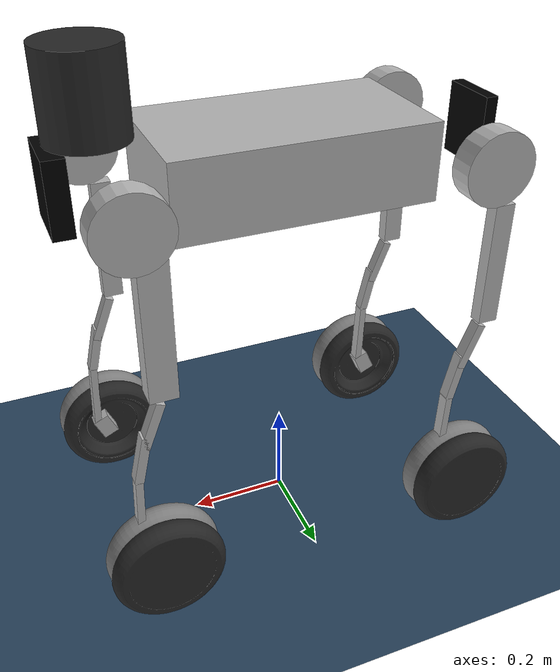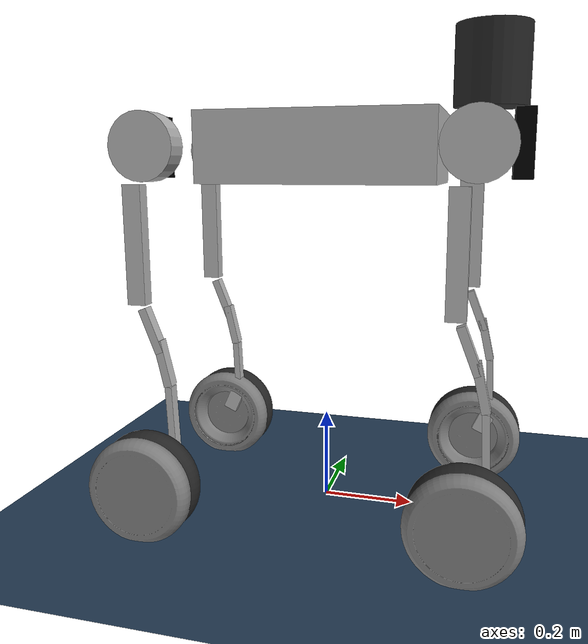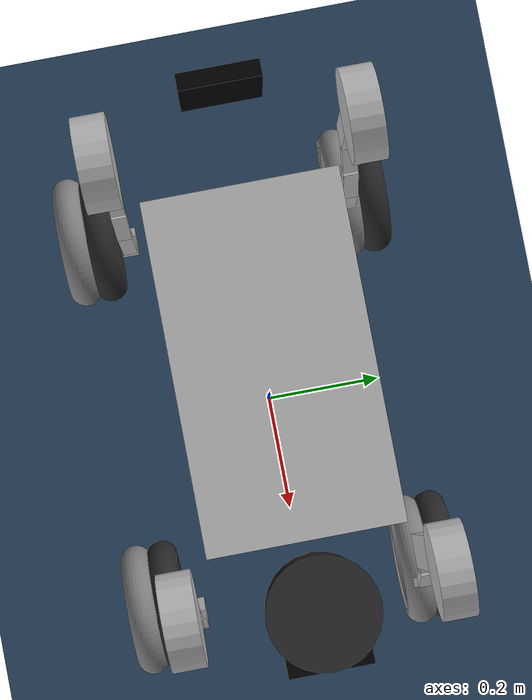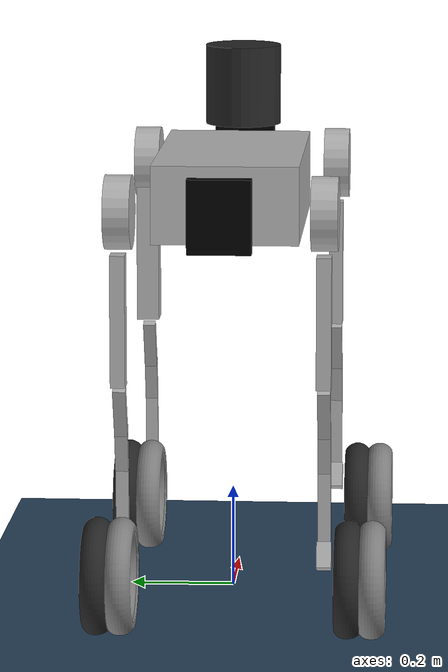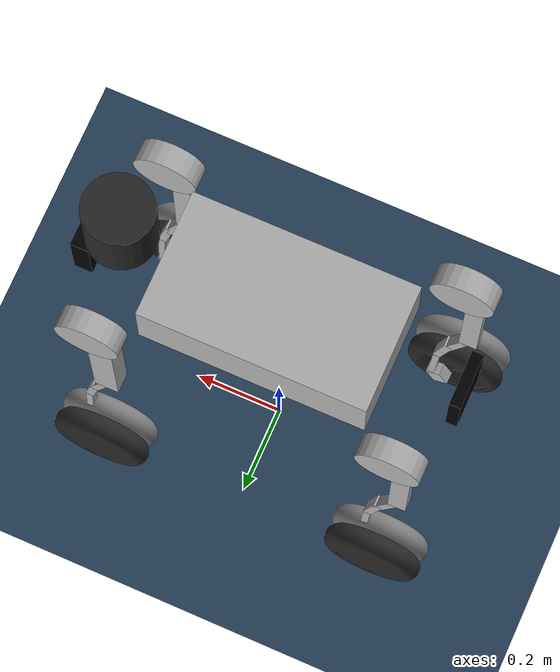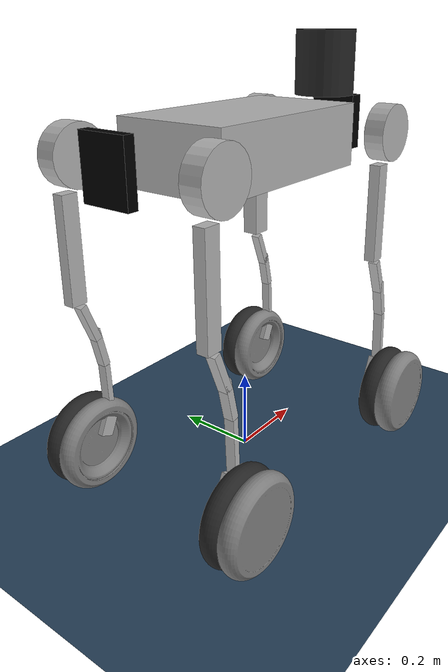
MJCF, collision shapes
<mujoco model="b2w scene">
  <include file="b2w.xml"/>

  <statistic center="0 0 0.1" extent="0.8"/>

  <visual>
    <headlight diffuse="0.6 0.6 0.6" ambient="0.3 0.3 0.3" specular="0 0 0"/>
    <rgba haze="0.15 0.25 0.35 1"/>
    <global azimuth="-130" elevation="-20"/>
  </visual>

  <asset>
    <texture type="skybox" builtin="gradient" rgb1="0.3 0.5 0.7" rgb2="0 0 0" width="512" height="3072"/>
    <texture type="2d" name="groundplane" builtin="checker" mark="edge" rgb1="0.2 0.3 0.4" rgb2="0.1 0.2 0.3"
      markrgb="0.8 0.8 0.8" width="300" height="300"/>
    <material name="groundplane" texture="groundplane" texuniform="true" texrepeat="5 5" reflectance="0.2"/>
  </asset>

  <worldbody>
    <light pos="0 0 1.5" dir="0 0 -1" directional="true"/>
    <geom name="floor" size="0 0 0.05" type="plane" material="groundplane"/>

  </worldbody>
</mujoco>

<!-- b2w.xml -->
<mujoco model="b2">
  <compiler angle="radian" meshdir="assets" autolimits="true" />

  <default>
    <default class="b2">
      <geom type="mesh" />
      <joint damping="1" armature="0.1" />
      <default class="visual">
        <geom contype="0" conaffinity="0" group="2" />
      </default>
      <default class="collision">
        <geom group="3" mass="0" density="0" />
      </default>
      <site size="0.001" rgba="0.5 0.5 0.5 0.3" group="4" />
    </default>
  </default>

  <asset>
    <mesh name="base_link" file="base_link.obj" />
    <mesh name="logo_left" file="logo_left.obj" />
    <mesh name="logo_right" file="logo_right.obj" />
    <mesh name="unitree_ladar" file="unitree_ladar.obj" />
    <mesh name="f_dc_link" file="f_dc_link.obj" />
    <mesh name="r_dc_link" file="r_dc_link.obj" />
    <mesh name="fake_imu_link" file="fake_imu_link.STL" />
    <mesh name="fake_head_Link" file="fake_head_Link.STL" />
    <mesh name="fake_tail_link" file="fake_tail_link.STL" />
    <mesh name="FL_hip" file="FL_hip.obj" />
    <mesh name="FL_thigh" file="FL_thigh.obj" />
    <mesh name="FL_thigh_protect" file="FL_thigh_protect.obj" />
    <mesh name="FL_calf" file="FL_calf.STL" />
    <mesh name="FL_foot" file="FL_foot.obj" />
    <mesh name="FR_hip" file="FR_hip.obj" />
    <mesh name="FR_thigh" file="FR_thigh.obj" />
    <mesh name="FR_thigh_protect" file="FR_thigh_protect.obj" />
    <mesh name="FR_calf" file="FR_calf.STL" />
    <mesh name="FR_foot" file="FR_foot.obj" />
    <mesh name="RL_hip" file="RL_hip.obj" />
    <mesh name="RL_thigh" file="RL_thigh.obj" />
    <mesh name="RL_thigh_protect" file="RL_thigh_protect.obj" />
    <mesh name="RL_calf" file="RL_calf.STL" />
    <mesh name="RL_foot" file="RL_foot.obj" />
    <mesh name="RR_hip" file="RR_hip.obj" />
    <mesh name="RR_thigh" file="RR_thigh.obj" />
    <mesh name="RR_thigh_protect" file="RR_thigh_protect.obj" />
    <mesh name="RR_calf" file="RR_calf.STL" />
    <mesh name="RR_foot" file="RR_foot.obj" />

    <mesh name="FR_wheel" file="FR_wheel.STL" />
    <mesh name="FL_wheel" file="FL_wheel.STL" />
    <mesh name="RR_wheel" file="RR_wheel.STL" />
    <mesh name="RL_wheel" file="RL_wheel.STL" />

    <mesh name="f_oc_link" file="f_oc_link.obj" />
    <mesh name="r_oc_link" file="r_oc_link.obj" />
  </asset>
  <worldbody>
    <body name="base_link" pos="0 0 0.8" childclass="b2">
      <inertial pos="0.0212868 0.0045819 0.0106169" quat="0.00178111 0.675412 -0.000262894 0.737438"
        mass="40.8426" diaginertia="1.73786 1.66448 0.343734" />
      <joint name="floating_base_joint" type="free" />
      <geom type="mesh" contype="0" conaffinity="0" group="1" density="0" rgba="0.7 0.7 0.7 1"
        mesh="base_link" />
      <geom size="0.25 0.14 0.075" type="box" rgba="0.7 0.7 0.7 1" class="collision" />
      <geom type="mesh" contype="0" conaffinity="0" group="1" density="0" rgba="1 1 1 1"
        mesh="logo_left" />
      <geom type="mesh" contype="0" conaffinity="0" group="1" density="0" rgba="1 1 1 1"
        mesh="logo_right" />
      <geom pos="0.34218 0 0.17851" type="mesh" contype="0" conaffinity="0" group="1" density="0"
        rgba="0.15 0.15 0.15 1" mesh="unitree_ladar" />
      <geom size="0.076 0.08" pos="0.34218 0 0.15851" type="cylinder" rgba="0.15 0.15 0.15 1"
        class="collision" />
      <geom pos="0.841724 -4.57659e-06 0.130379" quat="0.00244632 3.13845e-06 0.999997 1.29099e-06"
        type="mesh" contype="0" conaffinity="0" group="1" density="0" rgba="0 0 0 1"
        mesh="f_dc_link" />
      <geom pos="-0.378319 0.000200109 -0.379902" quat="-1.30076e-06 -0.708662 5.35065e-07 0.705548"
        type="mesh" contype="0" conaffinity="0" group="1" density="0" rgba="0 0 0 1"
        mesh="r_dc_link" />
      <geom pos="0 -0.02341 0.04927" type="mesh" contype="0" conaffinity="0" group="1" density="0"
        rgba="0 0 0 1" mesh="fake_imu_link" />
      <geom type="mesh" contype="0" conaffinity="0" group="1" density="0" rgba="0 0 0 1"
        mesh="fake_head_Link" />
      <geom size="0.02 0.06 0.07" pos="0.41 0 0.005" type="box" rgba="0 0 0 1" class="collision" />
      <geom type="mesh" contype="0" conaffinity="0" group="1" density="0" rgba="0 0 0 1"
        mesh="fake_tail_link" />
      <geom size="0.0125 0.06 0.07" pos="-0.405 0 0.005" type="box" rgba="0 0 0 1" class="collision" />
      <geom pos="0.84158 -0.0134347 -0.0134347" quat="-3.89602e-06 1.29867e-06 0.707107 -0.707107"
        type="mesh" contype="0" conaffinity="0" group="1" density="0" rgba="0 0 0 1"
        mesh="f_oc_link" />
      <geom pos="-0.00451008 0.0252504 -0.0262476"
        quat="0.707107 -0.707107 -1.29867e-06 -1.29867e-06" type="mesh" contype="0" conaffinity="0"
        group="1" density="0" rgba="0 0 0 1" mesh="r_oc_link" />
      <site name="imu" pos="0 -0.02341 0.04927" />
      <body name="FL_hip" pos="0.3285 0.072 0">
        <inertial pos="-0.00829923 -0.00998502 0.000235465"
          quat="0.525168 0.518964 0.477213 0.476595" mass="2.5294"
          diaginertia="0.00485541 0.00370618 0.00277182" />
        <joint name="FL_hip_joint" pos="0 0 0" axis="1 0 0" range="-0.87 0.87" />
        <geom type="mesh" contype="0" conaffinity="0" group="1" density="0" rgba="0.7 0.7 0.7 1"
          mesh="FL_hip" />
        <geom size="0.07 0.025" pos="0 0.12 0" quat="0.707107 0.707107 0 0" type="cylinder"
          rgba="0.7 0.7 0.7 1" class="collision" />
        <body name="FL_thigh" pos="0 0.11973 0">
          <inertial pos="-0.00418663 -0.0366068 -0.0432737"
            quat="0.884916 0.0880602 -0.00896728 0.457262" mass="7.4554"
            diaginertia="0.085057 0.0842843 0.0112538" />
          <joint name="FL_thigh_joint" pos="0 0 0" axis="0 1 0" range="-0.94 4.69" />
          <geom type="mesh" contype="0" conaffinity="0" group="1" density="0" rgba="0.7 0.7 0.7 1"
            mesh="FL_thigh" />
          <geom size="0.16 0.02225 0.027" pos="-0.025 0 -0.16" quat="0.707388 0 0.706825 0"
            type="box" rgba="0.7 0.7 0.7 1" class="collision" />
          <geom type="mesh" contype="0" conaffinity="0" group="1" density="0"
            rgba="0.65 0.68 0.65 1" mesh="FL_thigh_protect" />
          <body name="FL_calf" pos="0 -8.6984e-05 -0.35">
            <inertial pos="0.0096848 1.25758e-05 -0.158987"
              quat="0.70753 -0.00625821 -0.00634277 0.706627" mass="0.679123"
              diaginertia="0.0162494 0.0161173 0.000398115" />
            <joint name="FL_calf_joint" pos="0 0 0" axis="0 1 0" range="-2.82 -0.43" />
            <geom type="mesh" contype="0" conaffinity="0" group="1" density="0" rgba="0.7 0.7 0.7 1"
              mesh="FL_calf" />
            <geom size="0.05 0.01225 0.009" pos="-0.002 0 -0.03" quat="0.825336 0 0.564642 0"
              type="box" rgba="0.7 0.7 0.7 1" class="collision" />
            <geom size="0.05 0.01225 0.009" pos="0.022 0 -0.1" quat="0.780707 0 0.624897 0"
              type="box" rgba="0.7 0.7 0.7 1" class="collision" />
            <geom size="0.075 0.01225 0.0075" pos="0.036 0 -0.225" quat="0.721382 0 0.692537 0"
              type="box" rgba="0.7 0.7 0.7 1" class="collision" />
            <geom size="0.025 0.014 0.0175" pos="0.023 0 -0.31" quat="0.540302 0 0.841471 0"
              type="box" rgba="0.7 0.7 0.7 1" class="collision" />
            <body name="FL_wheel_link" pos="0 0 -0.35">
              <inertial pos="-0.00117 0.051576 -0.001334"
                quat="0.661419 0.248219 0.250051 0.662108" mass="0.918"
                diaginertia="0.00611012 0.00328926 0.00319322" />
              <joint name="FL_wheel_joint" pos="0 0 0" axis="0 1 0" />
              <geom type="mesh" rgba="0.15 0.15 0.15 1" mesh="FL_wheel" />
              <geom pos="0 -0.045816 0" type="mesh" mesh="FL_wheel" class="collision"
                friction="0.4 0.005 0.0001" />
            </body>
          </body>
        </body>
      </body>
      <body name="FR_hip" pos="0.3285 -0.072 0">
        <inertial pos="-0.00829923 0.00998502 0.000235465"
          quat="0.476595 0.477213 0.518964 0.525168" mass="2.5294"
          diaginertia="0.00485541 0.00370618 0.00277182" />
        <joint name="FR_hip_joint" pos="0 0 0" axis="1 0 0" range="-0.87 0.87" />
        <geom type="mesh" contype="0" conaffinity="0" group="1" density="0" rgba="0.7 0.7 0.7 1"
          mesh="FR_hip" />
        <geom size="0.07 0.025" pos="0 -0.12 0" quat="0.707107 0.707107 0 0" type="cylinder"
          rgba="0.7 0.7 0.7 1" class="collision" />
        <body name="FR_thigh" pos="0 -0.11973 0">
          <inertial pos="-0.00418663 0.0366068 -0.0432737"
            quat="0.457262 -0.00896728 0.0880602 0.884916" mass="7.4554"
            diaginertia="0.085057 0.0842843 0.0112538" />
          <joint name="FR_thigh_joint" pos="0 0 0" axis="0 1 0" range="-0.94 4.69" />
          <geom type="mesh" contype="0" conaffinity="0" group="1" density="0" rgba="0.7 0.7 0.7 1"
            mesh="FR_thigh" />
          <geom size="0.125 0.014 0.02" pos="-0.03 0 -0.2" quat="0.707388 0 0.706825 0" type="box"
            rgba="0.7 0.7 0.7 1" class="collision" />
          <geom type="mesh" contype="0" conaffinity="0" group="1" density="0"
            rgba="0.65 0.68 0.65 1" mesh="FR_thigh_protect" />
          <body name="FR_calf" pos="0 8.6986e-05 -0.35">
            <inertial pos="0.0096848 0 -0.158987" quat="0.707079 -0.00630052 -0.00630052 0.707079"
              mass="0.679123" diaginertia="0.0162494 0.0161173 0.000398115" />
            <joint name="FR_calf_joint" pos="0 0 0" axis="0 1 0" range="-2.82 -0.43" />
            <geom type="mesh" contype="0" conaffinity="0" group="1" density="0" rgba="0.7 0.7 0.7 1"
              mesh="FR_calf" />
            <geom size="0.05 0.01225 0.009" pos="-0.002 0 -0.03" quat="0.825336 0 0.564642 0"
              type="box" rgba="0.7 0.7 0.7 1" class="collision" />
            <geom size="0.05 0.01225 0.009" pos="0.022 0 -0.1" quat="0.780707 0 0.624897 0"
              type="box" rgba="0.7 0.7 0.7 1" class="collision" />
            <geom size="0.075 0.01225 0.0075" pos="0.036 0 -0.225" quat="0.721382 0 0.692537 0"
              type="box" rgba="0.7 0.7 0.7 1" class="collision" />
            <geom size="0.025 0.014 0.0175" pos="0.023 0 -0.31" quat="0.540302 0 0.841471 0"
              type="box" rgba="0.7 0.7 0.7 1" class="collision" />
            <body name="FR_wheel_link" pos="0 0 -0.35">
              <inertial pos="-0.00117 -0.051576 -0.001334"
                quat="0.661419 0.248219 0.250051 0.662108" mass="0.918"
                diaginertia="0.00611012 0.00328926 0.00319322" />
              <joint name="FR_wheel_joint" pos="0 0 0" axis="0 1 0" />
              <geom type="mesh" rgba="0.15 0.15 0.15 1" mesh="FR_wheel" />
              <geom pos="0 -0.045816 0" type="mesh" mesh="FR_wheel" class="collision"
                friction="0.4 0.005 0.0001" />
            </body>
          </body>
        </body>
      </body>
      <body name="RL_hip" pos="-0.3285 0.072 0">
        <inertial pos="0.00829923 -0.00998502 0.000235465"
          quat="0.477213 0.476595 0.525168 0.518964" mass="2.5294"
          diaginertia="0.00485541 0.00370618 0.00277182" />
        <joint name="RL_hip_joint" pos="0 0 0" axis="1 0 0" range="-0.87 0.87" />
        <geom type="mesh" contype="0" conaffinity="0" group="1" density="0" rgba="0.7 0.7 0.7 1"
          mesh="RL_hip" />
        <geom size="0.07 0.025" pos="0 0.12 0" quat="0.707107 0.707107 0 0" type="cylinder"
          rgba="0.7 0.7 0.7 1" class="collision" />
        <body name="RL_thigh" pos="0 0.11973 0">
          <inertial pos="-0.00418663 -0.0366068 -0.0432737"
            quat="0.884916 0.0880602 -0.00896728 0.457262" mass="7.4554"
            diaginertia="0.085057 0.0842843 0.0112538" />
          <joint name="RL_thigh_joint" pos="0 0 0" axis="0 1 0" range="-0.94 4.69" />
          <geom type="mesh" contype="0" conaffinity="0" group="1" density="0" rgba="0.7 0.7 0.7 1"
            mesh="RL_thigh" />
          <geom size="0.125 0.014 0.02" pos="-0.03 0 -0.2" quat="0.707388 0 0.706825 0" type="box"
            rgba="0.7 0.7 0.7 1" class="collision" />
          <geom type="mesh" contype="0" conaffinity="0" group="1" density="0"
            rgba="0.65 0.68 0.65 1" mesh="RL_thigh_protect" />
          <body name="RL_calf" pos="0 -8.6984e-05 -0.35">
            <inertial pos="0.0096848 1.25758e-05 -0.158987"
              quat="0.70753 -0.00625821 -0.00634277 0.706627" mass="0.679123"
              diaginertia="0.0162494 0.0161173 0.000398115" />
            <joint name="RL_calf_joint" pos="0 0 0" axis="0 1 0" range="-2.82 -0.43" />
            <geom type="mesh" contype="0" conaffinity="0" group="1" density="0" rgba="0.7 0.7 0.7 1"
              mesh="RL_calf" />
            <geom size="0.05 0.01225 0.009" pos="-0.002 0 -0.03" quat="0.825336 0 0.564642 0"
              type="box" rgba="0.7 0.7 0.7 1" class="collision" />
            <geom size="0.05 0.01225 0.009" pos="0.022 0 -0.1" quat="0.780707 0 0.624897 0"
              type="box" rgba="0.7 0.7 0.7 1" class="collision" />
            <geom size="0.075 0.01225 0.0075" pos="0.036 0 -0.225" quat="0.721382 0 0.692537 0"
              type="box" rgba="0.7 0.7 0.7 1" class="collision" />
            <geom size="0.025 0.014 0.0175" pos="0.023 0 -0.31" quat="0.540302 0 0.841471 0"
              type="box" rgba="0.7 0.7 0.7 1" class="collision" />
            <body name="RL_wheel_link" pos="0 0 -0.35">
              <inertial pos="-0.00117 0.051576 -0.001334"
                quat="0.661419 0.248219 0.250051 0.662108" mass="0.918"
                diaginertia="0.00611012 0.00328926 0.00319322" />
              <joint name="RL_wheel_joint" pos="0 0 0" axis="0 1 0" />
              <geom type="mesh" rgba="0.15 0.15 0.15 1" mesh="RL_wheel" />
              <geom pos="0 -0.045816 0" type="mesh" mesh="RL_wheel" class="collision"
                friction="0.4 0.005 0.0001" />
            </body>
          </body>
        </body>
      </body>
      <body name="RR_hip" pos="-0.3285 -0.072 0">
        <inertial pos="0.00829923 -0.00825992 0.000235465" quat="0.524846 0.53164 0.469132 0.470967"
          mass="2.5294" diaginertia="0.0048658 0.00378576 0.00284106" />
        <joint name="RR_hip_joint" pos="0 0 0" axis="1 0 0" range="-0.87 0.87" />
        <geom type="mesh" contype="0" conaffinity="0" group="1" density="0" rgba="0.7 0.7 0.7 1"
          mesh="RR_hip" />
        <geom size="0.07 0.025" pos="0 -0.12 0" quat="0.707107 0.707107 0 0" type="cylinder"
          rgba="0.7 0.7 0.7 1" class="collision" />
        <body name="RR_thigh" pos="0 -0.11973 0">
          <inertial pos="-0.00418663 0.0366068 -0.0432737"
            quat="0.457262 -0.00896728 0.0880602 0.884916" mass="7.4554"
            diaginertia="0.085057 0.0842843 0.0112538" />
          <joint name="RR_thigh_joint" pos="0 0 0" axis="0 1 0" range="-0.94 4.69" />
          <geom type="mesh" contype="0" conaffinity="0" group="1" density="0" rgba="0.7 0.7 0.7 1"
            mesh="RR_thigh" />
          <geom size="0.125 0.014 0.02" pos="-0.03 0 -0.2" quat="0.707388 0 0.706825 0" type="box"
            rgba="0.7 0.7 0.7 1" class="collision" />
          <geom type="mesh" contype="0" conaffinity="0" group="1" density="0"
            rgba="0.65 0.68 0.65 1" mesh="RR_thigh_protect" />
          <body name="RR_calf" pos="0 8.6986e-05 -0.35">
            <inertial pos="0.0096848 -1.25756e-05 -0.158987"
              quat="0.706627 -0.00634277 -0.00625821 0.70753" mass="0.679123"
              diaginertia="0.0162494 0.0161173 0.000398115" />
            <joint name="RR_calf_joint" pos="0 0 0" axis="0 1 0" range="-2.82 -0.43" />
            <geom type="mesh" contype="0" conaffinity="0" group="1" density="0" rgba="0.7 0.7 0.7 1"
              mesh="RR_calf" />
            <geom size="0.05 0.01225 0.009" pos="-0.002 0 -0.03" quat="0.825336 0 0.564642 0"
              type="box" rgba="0.7 0.7 0.7 1" class="collision" />
            <geom size="0.05 0.01225 0.009" pos="0.022 0 -0.1" quat="0.780707 0 0.624897 0"
              type="box" rgba="0.7 0.7 0.7 1" class="collision" />
            <geom size="0.075 0.01225 0.0075" pos="0.036 0 -0.225" quat="0.721382 0 0.692537 0"
              type="box" rgba="0.7 0.7 0.7 1" class="collision" />
            <geom size="0.025 0.014 0.0175" pos="0.023 0 -0.31" quat="0.540302 0 0.841471 0"
              type="box" rgba="0.7 0.7 0.7 1" class="collision" />
            <body name="RR_wheel_link" pos="0 0 -0.35">
              <inertial pos="-0.00117 -0.051576 -0.001334"
                quat="0.661419 0.248219 0.250051 0.662108" mass="0.918"
                diaginertia="0.00611012 0.00328926 0.00319322" />
              <joint name="RR_wheel_joint" pos="0 0 0" axis="0 1 0" />
              <geom type="mesh" rgba="0.15 0.15 0.15 1" mesh="RR_wheel" />
              <geom pos="0 -0.045816 0" type="mesh" mesh="RR_wheel" class="collision"
                friction="0.4 0.005 0.0001" />
            </body>
          </body>
        </body>
      </body>
    </body>
  </worldbody>

  <actuator>
    <motor class="b2" ctrlrange="-200 200" name="FR_hip" joint="FR_hip_joint" />
    <motor class="b2" ctrlrange="-200 200" name="FR_thigh" joint="FR_thigh_joint" />
    <motor class="b2" ctrlrange="-300 300" name="FR_calf" joint="FR_calf_joint" />
    <motor class="b2" ctrlrange="-200 200" name="FL_hip" joint="FL_hip_joint" />
    <motor class="b2" ctrlrange="-200 200" name="FL_thigh" joint="FL_thigh_joint" />
    <motor class="b2" ctrlrange="-300 300" name="FL_calf" joint="FL_calf_joint" />
    <motor class="b2" ctrlrange="-200 200" name="RR_hip" joint="RR_hip_joint" />
    <motor class="b2" ctrlrange="-200 200" name="RR_thigh" joint="RR_thigh_joint" />
    <motor class="b2" ctrlrange="-300 300" name="RR_calf" joint="RR_calf_joint" />
    <motor class="b2" ctrlrange="-200 200" name="RL_hip" joint="RL_hip_joint" />
    <motor class="b2" ctrlrange="-200 200" name="RL_thigh" joint="RL_thigh_joint" />
    <motor class="b2" ctrlrange="-300 300" name="RL_calf" joint="RL_calf_joint" />

    <motor class="b2" ctrlrange="-20 20" name="FR_wheel" joint="FR_wheel_joint" />
    <motor class="b2" ctrlrange="-20 20" name="FL_wheel" joint="FL_wheel_joint" />
    <motor class="b2" ctrlrange="-20 20" name="RR_wheel" joint="RR_wheel_joint" />
    <motor class="b2" ctrlrange="-20 20" name="RL_wheel" joint="RL_wheel_joint" />
  </actuator>

  <sensor>
    <jointpos name="FR_hip_pos" joint="FR_hip_joint" />
    <jointpos name="FR_thigh_pos" joint="FR_thigh_joint" />
    <jointpos name="FR_calf_pos" joint="FR_calf_joint" />
    <jointpos name="FL_hip_pos" joint="FL_hip_joint" />
    <jointpos name="FL_thigh_pos" joint="FL_thigh_joint" />
    <jointpos name="FL_calf_pos" joint="FL_calf_joint" />
    <jointpos name="RR_hip_pos" joint="RR_hip_joint" />
    <jointpos name="RR_thigh_pos" joint="RR_thigh_joint" />
    <jointpos name="RR_calf_pos" joint="RR_calf_joint" />
    <jointpos name="RL_hip_pos" joint="RL_hip_joint" />
    <jointpos name="RL_thigh_pos" joint="RL_thigh_joint" />
    <jointpos name="RL_calf_pos" joint="RL_calf_joint" />

    <jointpos name="FR_wheel_pos" joint="FR_wheel_joint" />
    <jointpos name="FL_wheel_pos" joint="FL_wheel_joint" />
    <jointpos name="RR_wheel_pos" joint="RR_wheel_joint" />
    <jointpos name="RL_wheel_pos" joint="RL_wheel_joint" />

    <jointvel name="FR_hip_vel" joint="FR_hip_joint" />
    <jointvel name="FR_thigh_vel" joint="FR_thigh_joint" />
    <jointvel name="FR_calf_vel" joint="FR_calf_joint" />
    <jointvel name="FL_hip_vel" joint="FL_hip_joint" />
    <jointvel name="FL_thigh_vel" joint="FL_thigh_joint" />
    <jointvel name="FL_calf_vel" joint="FL_calf_joint" />
    <jointvel name="RR_hip_vel" joint="RR_hip_joint" />
    <jointvel name="RR_thigh_vel" joint="RR_thigh_joint" />
    <jointvel name="RR_calf_vel" joint="RR_calf_joint" />
    <jointvel name="RL_hip_vel" joint="RL_hip_joint" />
    <jointvel name="RL_thigh_vel" joint="RL_thigh_joint" />
    <jointvel name="RL_calf_vel" joint="RL_calf_joint" />

    <jointvel name="FR_wheel_vel" joint="FR_wheel_joint" />
    <jointvel name="FL_wheel_vel" joint="FL_wheel_joint" />
    <jointvel name="RR_wheel_vel" joint="RR_wheel_joint" />
    <jointvel name="RL_wheel_vel" joint="RL_wheel_joint" />

    <jointactuatorfrc name="FR_hip_torque" joint="FR_hip_joint" noise="0.01" />
    <jointactuatorfrc name="FR_thigh_torque" joint="FR_thigh_joint" noise="0.01" />
    <jointactuatorfrc name="FR_calf_torque" joint="FR_calf_joint" noise="0.01" />
    <jointactuatorfrc name="FL_hip_torque" joint="FL_hip_joint" noise="0.01" />
    <jointactuatorfrc name="FL_thigh_torque" joint="FL_thigh_joint" noise="0.01" />
    <jointactuatorfrc name="FL_calf_torque" joint="FL_calf_joint" noise="0.01" />
    <jointactuatorfrc name="RR_hip_torque" joint="RR_hip_joint" noise="0.01" />
    <jointactuatorfrc name="RR_thigh_torque" joint="RR_thigh_joint" noise="0.01" />
    <jointactuatorfrc name="RR_calf_torque" joint="RR_calf_joint" noise="0.01" />
    <jointactuatorfrc name="RL_hip_torque" joint="RL_hip_joint" noise="0.01" />
    <jointactuatorfrc name="RL_thigh_torque" joint="RL_thigh_joint" noise="0.01" />
    <jointactuatorfrc name="RL_calf_torque" joint="RL_calf_joint" noise="0.01" />

    <jointactuatorfrc name="FR_wheel_torque" joint="FR_wheel_joint" />
    <jointactuatorfrc name="FL_wheel_torque" joint="FL_wheel_joint" />
    <jointactuatorfrc name="RR_wheel_torque" joint="RR_wheel_joint" />
    <jointactuatorfrc name="RL_wheel_torque" joint="RL_wheel_joint" />

    <framequat name="imu_quat" objtype="site" objname="imu" />
    <gyro name="imu_gyro" site="imu" />
    <accelerometer name="imu_acc" site="imu" />

    <framepos name="frame_pos" objtype="site" objname="imu" />
    <framelinvel name="frame_vel" objtype="site" objname="imu" />
  </sensor>

</mujoco>
